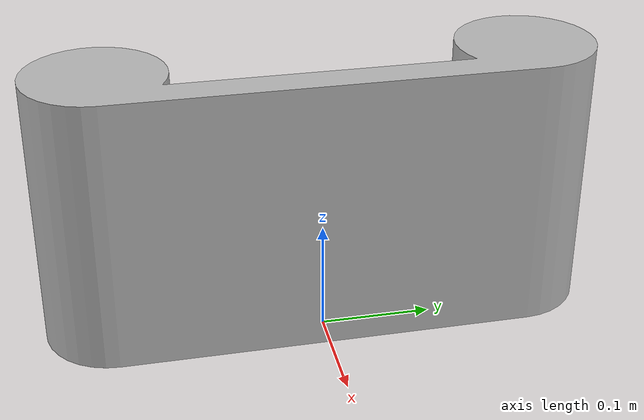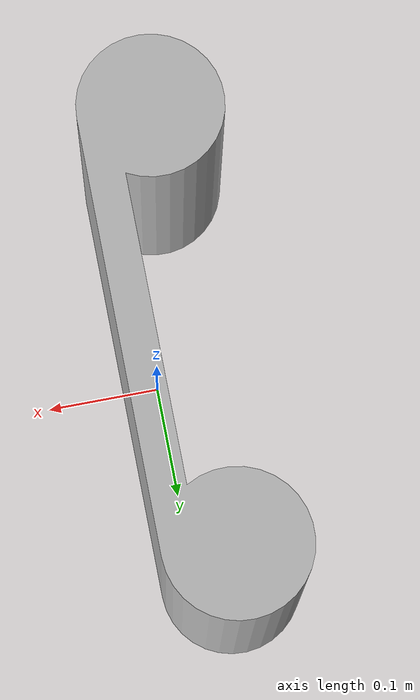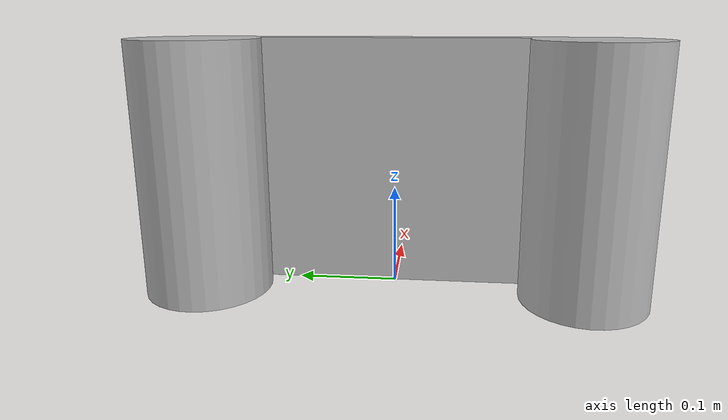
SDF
<?xml version='1.0'?>
<sdf version="1.4">
<model name="dock">
  <pose>0 0 0 0 0 0</pose>
  <static>true</static>
    <link name="link">
      <inertial>
        <mass>1.0</mass>
        <inertia> <!-- interias are tricky to compute -->
          <!-- http://answers.gazebosim.org/question/4372/the-inertia-matrix-explained/ -->
          <ixx>0.083</ixx>       <!-- for a box: ixx = 0.083 * mass * (y*y + z*z) -->
          <ixy>0.0</ixy>         <!-- for a box: ixy = 0 -->
          <ixz>0.0</ixz>         <!-- for a box: ixz = 0 -->
          <iyy>0.083</iyy>       <!-- for a box: iyy = 0.083 * mass * (x*x + z*z) -->
          <iyz>0.0</iyz>         <!-- for a box: iyz = 0 -->
          <izz>0.083</izz>       <!-- for a box: izz = 0.083 * mass * (x*x + y*y) -->
        </inertia>
      </inertial>
      <collision name="collision">
        <geometry>
            <mesh>
                <uri>model://test2/meshes/test2.dae</uri>
            </mesh>
        </geometry>
      </collision>
      <visual name="visual">
        <geometry>
            <mesh>
                <uri>model://test2/meshes/test2.dae</uri>
            </mesh>
        </geometry>
      </visual>
    </link>
  </model>
</sdf>
